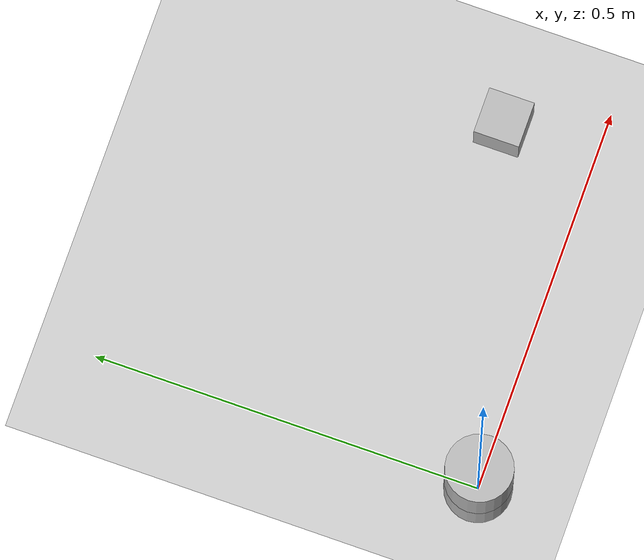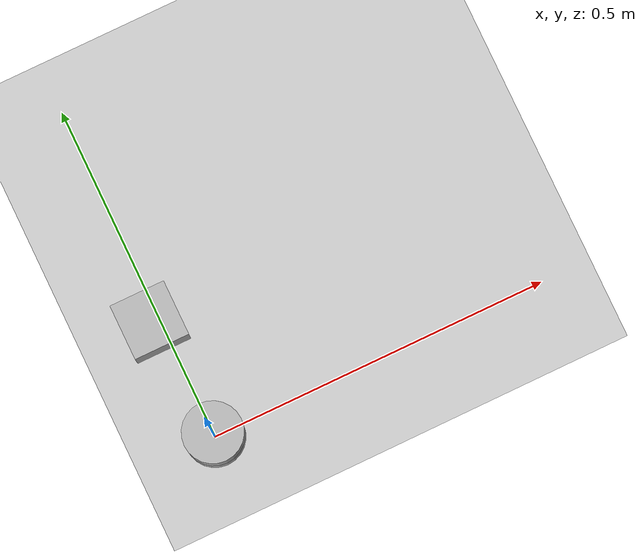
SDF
<?xml version="1.0" ?>
<sdf version="1.5">
    <world name="default">
        <!-- A global light source -->
        <include>
            <uri>model://sun</uri>
        </include>
        <!-- A ground plane -->
        <include>
            <uri>model://ground_plane</uri>
        </include>

        <!-- A testing model that includes the Velodyne sensor model -->
        <model name="velodyne_labmetro">
            <include>
                <uri>model://velodyne_hdl32</uri>
            </include>

            <!-- Attach the plugin to this model -->
            <plugin name="velodyne_control" filename="libvelodyne_plugin.so">
                <velocidade>15</velocidade>
            </plugin>
        </model>

        <model name="distorted_camera">
            <link name="link">
                <pose>0 0 2 0 0 0</pose>
                <collision name="collision">
                    <geometry>
                        <box>
                            <size>0.05 0.05 0.05</size>
                        </box>
                    </geometry>
                </collision>
                <visual name="visual">
                    <geometry>
                        <box>
                            <size>0.05 0.05 0.05</size>
                        </box>
                    </geometry>
                </visual>
                <sensor name="camera" type="camera">
                    <camera>
                        <horizontal_fov>1.047</horizontal_fov>
                        <image>
                            <width>5184</width>
                            <height>3456</height>
                        </image>
                        <format>R8G8B8</format>
                        <clip>
                            <near>1</near>
                            <far>50</far>
                        </clip>
                        <distortion>
                            <k1>0</k1>
                            <k2>0</k2>
                            <k3>0.0</k3>
                            <p1>-0.00028</p1>
                            <p2>-0.00005</p2>
                            <center>0 0</center>
                        </distortion>
                    </camera>
                    <always_on>1</always_on>
                    <update_rate>30</update_rate>
                    <visualize>true</visualize>
                </sensor>
            </link>
            <static>true</static>
        </model>

    </world>
</sdf>

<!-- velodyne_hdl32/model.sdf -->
<sdf version="1.5">
       <model name="velodyne_hdl-32">
            <!-- Give the base link a unique name -->
            <link name="base">

                <!-- Offset the base by half the lenght of the cylinder -->
                <pose>0 0 0.029335 0 0 0</pose>
                <inertial>
                    <mass>1.2</mass>
                    <inertia>
                        <ixx>0.001087473</ixx>
                        <iyy>0.001087473</iyy>
                        <izz>0.001092437</izz>
                        <ixy>0</ixy>
                        <ixz>0</ixz>
                        <iyz>0</iyz>
                    </inertia>
                </inertial>
                <collision name="base_collision">
                    <geometry>
                        <cylinder>
                            <!-- Radius and length provided by Velodyne -->
                            <radius>.04267</radius>
                            <length>.05867</length>
                        </cylinder>
                    </geometry>
                </collision>

                <!-- The visual is mostly a copy of the collision -->
                <visual name="base_visual">
                    <geometry>
                        <cylinder>
                            <radius>.04267</radius>
                            <length>.05867</length>
                        </cylinder>
                    </geometry>
                </visual>
            </link>

            <!-- Give the base link a unique name -->
            <link name="top">

                <!-- Vertically offset the top cylinder by the length of the bottom
                    cylinder and half the length of this cylinder. -->
                <pose>0 0 0.095455 0 0 0</pose>
                <inertial>
                    <mass>0.1</mass>
                    <inertia>
                        <ixx>0.000090623</ixx>
                        <iyy>0.000090623</iyy>
                        <izz>0.000091036</izz>
                        <ixy>0</ixy>
                        <ixz>0</ixz>
                        <iyz>0</iyz>
                    </inertia>
                </inertial>
                <collision name="top_collision">
                    <geometry>
                        <cylinder>
                            <!-- Radius and length provided by Velodyne -->
                            <radius>0.04267</radius>
                            <length>0.07357</length>
                        </cylinder>
                    </geometry>
                </collision>
                <!-- Add a ray sensor, and give it a name -->
                <sensor type="ray" name="sensor">

                    <pose>0 0 -0.004645 1.5707 0 0</pose>

                    <!-- Enable visualization to see the rays in the GUI -->
                    <visualize>true</visualize>

                    <!-- Set the update rate of the sensor -->
                    <update_rate>30</update_rate>

                    <ray>

                        <!-- The scan element contains the horizontal and vertical beams.
                             We are leaving out the vertical beams for this tutorial. -->
                        <scan>

                            <!-- The horizontal beams -->
                            <horizontal>
                                <!-- The velodyne has 32 beams(samples) -->
                                <samples>32</samples>

                                <resolution>1</resolution>

                                <!-- Minimum angle in radians -->
                                <min_angle>-0.53529248</min_angle>

                                <!-- Maximum angle in radians -->
                                <max_angle>0.18622663</max_angle>
                            </horizontal>
                        </scan>

                        <!-- Range defines characteristics of an individual beam -->
                        <range>

                            <!-- Minimum distance of the beam -->
                            <min>0.05</min>

                            <!-- Maximum distance of the beam -->
                            <max>70</max>

                            <!-- Linear resolution of the beam -->
                            <resolution>0.02</resolution>
                        </range>
                    </ray>

                </sensor>

                <!-- The visual is mostly a copy of the collision -->
                <visual name="top_visual">
                    <geometry>
                        <cylinder>
                            <radius>0.04267</radius>
                            <length>0.07357</length>
                        </cylinder>
                    </geometry>
                </visual>
            </link>
            <!-- Each joint must have a unique name -->
            <joint type="revolute" name="joint">

                <!-- Position the joint at the bottom of the top link -->
                <pose>0 0 -0.036785 0 0 0</pose>

                <!-- Use the base link as the parent of the joint -->
                <parent>base</parent>

                <!-- Use the top link as the child of the joint -->
                <child>top</child>

                <!-- The axis defines the joint's degree of freedom -->
                <axis>

                    <!-- Revolve around the z-axis -->
                    <xyz>0 0 1</xyz>

                    <!-- Limit refers to the range of motion of the joint -->
                    <limit>

                        <!-- Use a very large number to indicate a continuous revolution -->
                        <lower>-10000000000000000</lower>
                        <upper>10000000000000000</upper>
                    </limit>
                </axis>
            </joint>
        </model>
</sdf>
